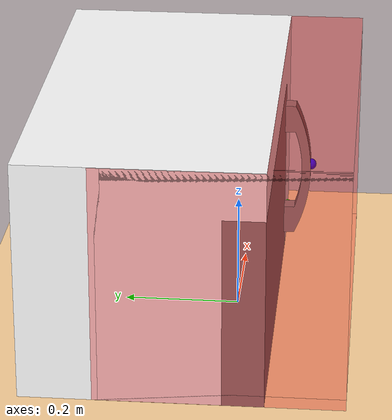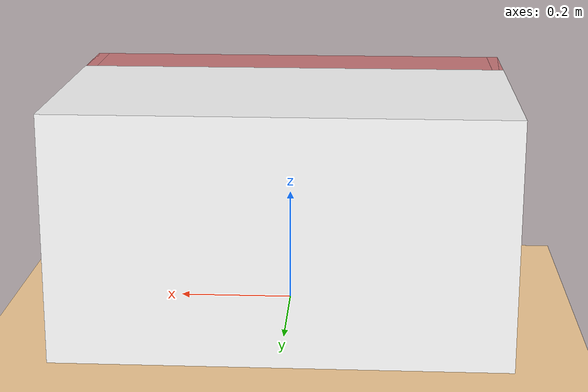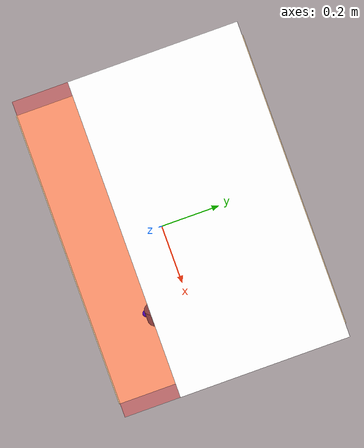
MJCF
<mujoco model="Microwave">
    <compiler angle="radian" />
    <asset>
        <mesh name="BaseJoint" file="meshes/BaseJoint.stl" scale="0.001 0.001 0.001" />
        <mesh name="Base" file="meshes/Base.stl" scale="0.001 0.001 0.001" />
    </asset>
    <worldbody>
        <light directional="true" pos="-0.5 0.5 3" dir="0 0 -1" />
        <geom pos="0 0 0" size="1 1 1" type="plane" rgba="1 0.83 0.61 0.5" />
        <body name="Base" pos="0.0 0.0 0.0" euler="-0.0 0.0 -0.0">

            <geom name="Base_visual" type="mesh" mesh="Base"
                contype="0" conaffinity="0" group="1" rgba="1 1 1 1"/>

            <geom name="c_floor" type="box" pos="0 0 0.01" size="0.378 0.203 0.01" rgba="1 0 0 0.3"/>
            <geom name="c_ceil"  type="box" pos="0 0 0.402" size="0.378 0.203 0.01" rgba="1 0 0 0.3"/>
            <geom name="c_back"  type="box" pos="0 0.203 0.206" size="0.378 0.01 0.206" rgba="1 0 0 0.3"/>
            <geom name="c_right" type="box" pos="0.368 0 0.206" size="0.01 0.203 0.206" rgba="1 0 0 0.3"/>
            <geom name="c_left"  type="box" pos="-0.368 0 0.206" size="0.01 0.203 0.206" rgba="1 0 0 0.3"/>

            <inertial mass="605.03" pos="0.04 0.16 0.23" fullinertia="18.8 44.9 42.3 1.7 1.8 1.1" />

            <body name="BaseJoint" pos="0.0 0.0 0.0" euler="-0.0 0.0 -0.0">
                <joint name="Base_Joint1" type="hinge" axis="0.0 0.0 1.0" pos="-0.377825 0.0 0.165225" />

                <geom name="BaseJoint_geom" type="mesh" mesh="BaseJoint" />

                <inertial mass="113.97" pos="-0.06 -0.03 0.16" fullinertia="1.08 4.77 3.79 0.02 -0.002 0.0006" />
            </body>

            <!-- Button positioned from real door measurements
            y: 0.07 m empirically makes the sphere half-portrude, perfectly cut in half, half in, half out red sphere.-->
            <body name="button_open" pos="0.314325 -0.07 0.0541" euler="0 0 0">
                <!-- purely visual, non-colliding button marker -->
                <geom type="sphere" size="0.01"
                    rgba="0 1 0 1"
                    contype="0" conaffinity="0"/>

                <!-- optional slide joint for later if you want it to actually move -->
                <joint name="btn_joint" type="slide"
                    axis="1 0 0" range="0 0.02"
                    stiffness="500" springref="0" damping="10"/>

                <!-- IK/contact target exactly at the button center -->
                <site name="btn_touch_surface"
                    pos="0 0 0"
                    size="0.01"
                    rgba="1 0 0 0.5"/>
            </body>

            <site name="handle_centroid"
                pos="0.219075 -0.117625 0.180"
                size="0.01"
                rgba="0 0 1 1"/>
        </body>
    </worldbody>
</mujoco>
